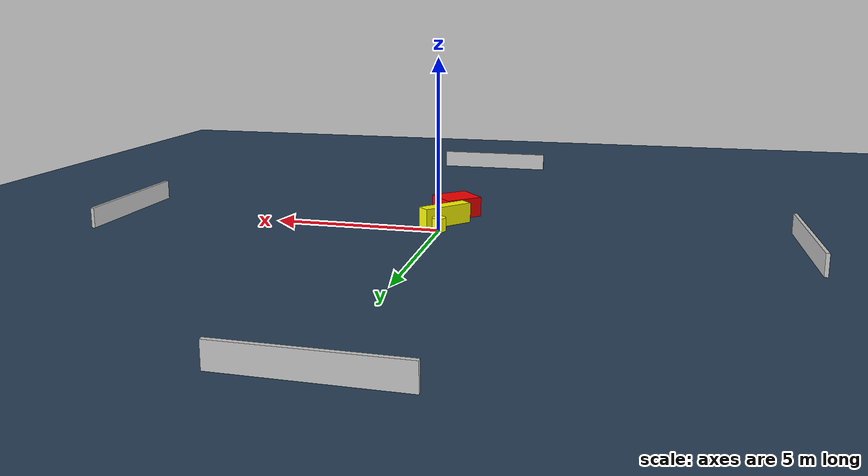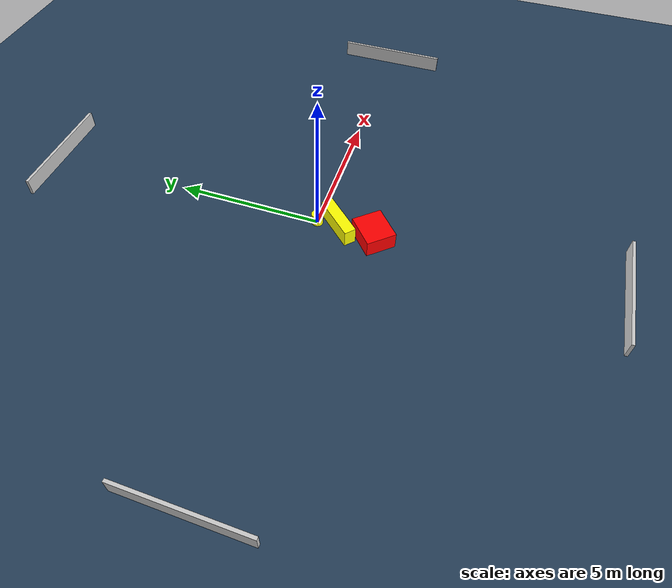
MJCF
<?xml version="1.0" ?>
<mujoco model="generated_environment">
  <option timestep="0.01" integrator="RK4" cone="elliptic"/>
  <default>
    <geom density="1"/>
  </default>
  <asset>
    <texture builtin="gradient" height="3072" name="skybox" rgb1="0.3 0.5 0.7" rgb2="0 0 0" type="skybox" width="512"/>
    <texture builtin="checker" height="300" name="groundplane" rgb1="0.2 0.3 0.4" rgb2="0.1 0.2 0.3" type="2d" width="300"/>
    <material name="groundplane" reflectance="0.2" texrepeat="5 5" texture="groundplane"/>
  </asset>
  <worldbody>
    <light dir="0 0 -1" directional="true" pos="0 0 1.5"/>
    <geom condim="3" friction="0.5 0.005 0.001" material="groundplane" name="floor" pos="0 0 0" size="0 0 0.05" type="plane"/>
    <body name="walls">
      <geom name="wall_1" condim="4" pos="-10.0 0.0 0.3" rgba="0.800000011920929 0.800000011920929 0.800000011920929 1.0" size="0.05 2.0 0.3" type="box"/>
      <geom name="wall_2" condim="4" pos="10.0 0.0 0.3" rgba="0.800000011920929 0.800000011920929 0.800000011920929 1.0" size="0.05 2.0 0.3" type="box"/>
      <geom name="wall_3" condim="4" pos="0.0 -10.0 0.3" rgba="0.800000011920929 0.800000011920929 0.800000011920929 1.0" size="2.0 0.05 0.3" type="box"/>
      <geom name="wall_4" condim="4" pos="0.0 10.0 0.3" rgba="0.800000011920929 0.800000011920929 0.800000011920929 1.0" size="2.0 0.05 0.3" type="box"/>
    </body>
    <body name="robot">
      <joint name="joint_x" type="slide" pos="0 0 0" axis="1 0 0"/>
      <joint name="joint_y" type="slide" pos="0 0 0" axis="0 1 0"/>
      <geom name="robot" type="cylinder" pos="0.0 0.0 0.2" size="0.2 0.2 0.0" mass="5.0" friction="1.0 0.005 0.0001" condim="4" rgba="1.0 1.0 0.0 1.0"/>
    </body>
    <body name="obstacle_1_movable">
      <geom name="obstacle_1_movable" condim="4" pos="-0.014068855122663046 -0.7405815530179802 0.3" euler="0 0 226.80883291008928" friction="0.0 0.005 0.001" rgba="1.0 1.0 0.0 1.0" size="0.7876930393503616 0.20430988582046364 0.3" type="box" mass="0.1"/>
      <joint type="free"/>
    </body>
    <body name="obstacle_2_static">
      <geom name="obstacle_2_static" condim="4" pos="-0.10418630310369237 -1.9834772519996131 0.3" euler="0 0 131.19255969479997" friction="0.0 0.005 0.001" rgba="1.0 0.0 0.0 1.0" size="0.5157340956155618 0.5858228827942501 0.3" type="box"/>
    </body>
  </worldbody>
  <actuator>
    <motor name="actuator_x" joint="joint_x" gear="1" ctrlrange="-1 1"/>
    <motor name="actuator_y" joint="joint_y" gear="1" ctrlrange="-1 1"/>
  </actuator>
</mujoco>
